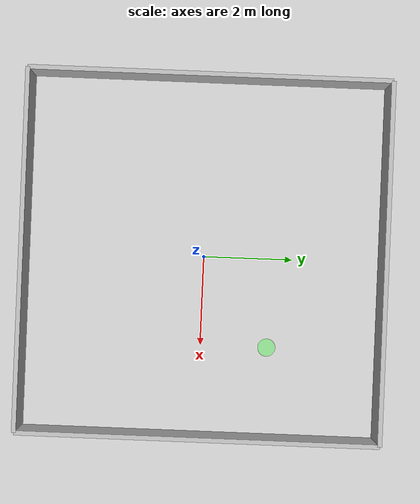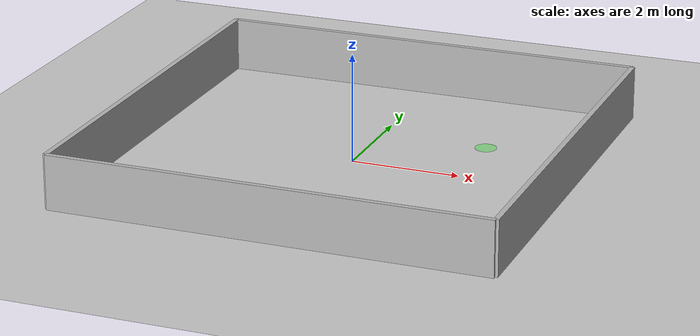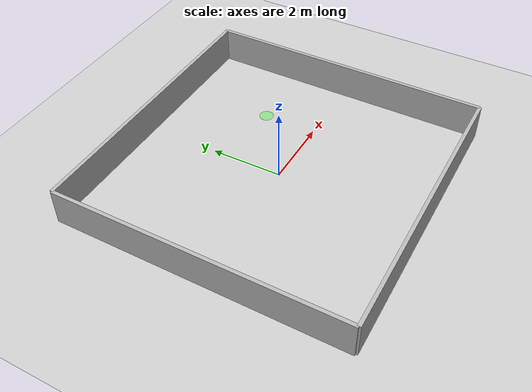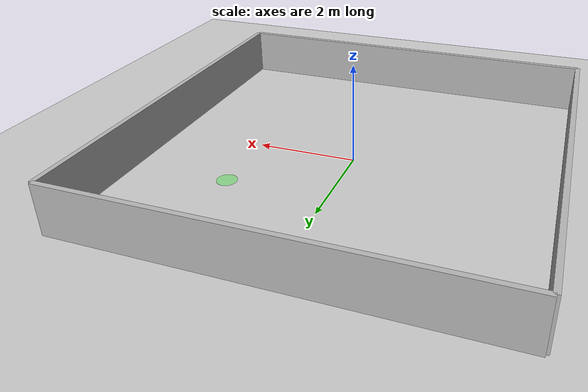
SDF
<?xml version="1.0"?>
<!-- Generated by Robotbase from world.yaml — edit the spec, not this file. -->
<sdf version="1.10">
  <world name="warehouse">
    <physics name="default" type="ignored"><max_step_size>0.001</max_step_size><real_time_factor>1.0</real_time_factor></physics>
    <plugin filename="gz-sim-physics-system" name="gz::sim::systems::Physics"></plugin>
    <plugin filename="gz-sim-user-commands-system" name="gz::sim::systems::UserCommands"></plugin>
    <plugin filename="gz-sim-scene-broadcaster-system" name="gz::sim::systems::SceneBroadcaster"></plugin>
    <light type="directional" name="sun"><cast_shadows>true</cast_shadows><pose>0 0 10 0 0 0</pose><diffuse>0.8 0.8 0.8 1</diffuse><direction>-0.5 0.1 -0.9</direction></light>
    <model name="ground_plane"><static>true</static><pose>0 0 0 0 0 0</pose><link name="link"><collision name="c"><geometry><plane><normal>0 0 1</normal><size>100 100</size></plane></geometry></collision><visual name="v"><geometry><plane><normal>0 0 1</normal><size>100 100</size></plane></geometry></visual></link></model>
    <model name="wall_0"><static>true</static><pose>0 4 0.5 0 0 0</pose><link name="link"><collision name="c"><geometry><box><size>8 0.1 1</size></box></geometry></collision><visual name="v"><geometry><box><size>8 0.1 1</size></box></geometry></visual></link></model>
    <model name="wall_1"><static>true</static><pose>0 -4 0.5 0 0 0</pose><link name="link"><collision name="c"><geometry><box><size>8 0.1 1</size></box></geometry></collision><visual name="v"><geometry><box><size>8 0.1 1</size></box></geometry></visual></link></model>
    <model name="wall_2"><static>true</static><pose>4 0 0.5 0 0 1.5708</pose><link name="link"><collision name="c"><geometry><box><size>8 0.1 1</size></box></geometry></collision><visual name="v"><geometry><box><size>8 0.1 1</size></box></geometry></visual></link></model>
    <model name="wall_3"><static>true</static><pose>-4 0 0.5 0 0 1.5708</pose><link name="link"><collision name="c"><geometry><box><size>8 0.1 1</size></box></geometry></collision><visual name="v"><geometry><box><size>8 0.1 1</size></box></geometry></visual></link></model>
    <model name="goal_marker"><static>true</static><pose>2 1.5 0.005 0 0 0</pose><link name="link"><visual name="v"><geometry><cylinder><radius>0.2</radius><length>0.01</length></cylinder></geometry><material><ambient>0 1 0 0.3</ambient><diffuse>0 1 0 0.3</diffuse></material></visual></link></model>
  </world>
</sdf>
